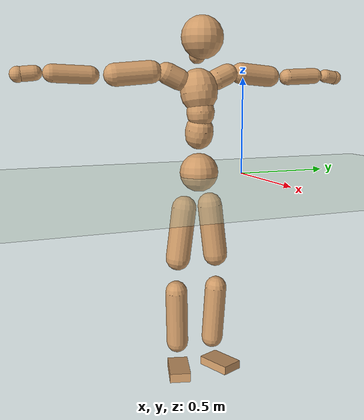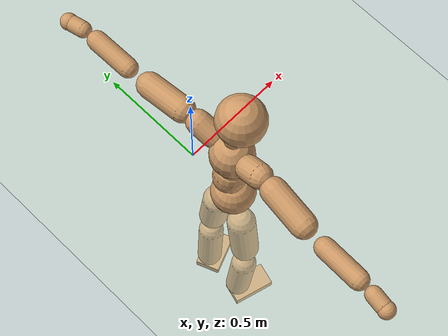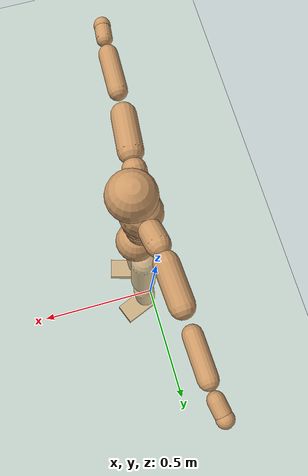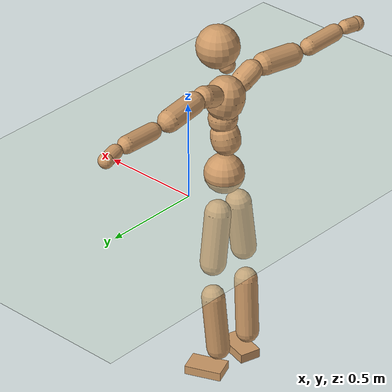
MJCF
<mujoco model="humanoid">
  <compiler coordinate="local"/>
  <default>
    <joint damping="0.0" armature="0.01" stiffness="0.0" limited="true"/>
    <geom conaffinity="1" condim="3" contype="7" margin="0.001" rgba="0.8 0.6 .4 1"/>
  </default>
  <asset>
    <texture type="skybox" builtin="gradient" rgb1=".4 .5 .6" rgb2="0 0 0" width="100" height="100"/>
    <texture builtin="flat" height="1278" mark="cross" markrgb="1 1 1" name="texgeom" random="0.01" rgb1="0.8 0.6 0.4" rgb2="0.8 0.6 0.4" type="cube" width="127"/>
    <texture builtin="checker" height="100" name="texplane" rgb1="0 0 0" rgb2="0.8 0.8 0.8" type="2d" width="100"/>
    <material name="MatPlane" reflectance="0.5" shininess="1" specular="1" texrepeat="60 60" texture="texplane"/>
    <material name="geom" texture="texgeom" texuniform="true"/>
  </asset>
  <worldbody>
    <light cutoff="100" diffuse="1 1 1" dir="-0 0 -1.3" directional="true" exponent="1" pos="0 0 1.3" specular=".1 .1 .1"/>
    <geom conaffinity="1" condim="3" name="floor" pos="0 0 0" rgba="0.8 0.9 0.8 1" size="100 100 .2" type="plane" material="MatPlane"/>
    <body name="Pelvis" pos="-0.0006 -0.2464 0.0186">
      <freejoint name="Pelvis"/>
      <geom type="sphere" contype="1" conaffinity="1" density="500" size="0.1000" pos="0.0000 0.0000 0.0000" name="Pelvis"/>
      <body name="L_Hip" pos="-0.0252 0.0613 -0.0893">
        <joint name="L_Hip_x" type="hinge" pos="0 0 0" axis="1 0 0" stiffness="800" damping="80" armature="0.02" range="-180.0000 180.0000"/>
        <joint name="L_Hip_y" type="hinge" pos="0 0 0" axis="0 1 0" stiffness="800" damping="80" armature="0.02" range="-180.0000 180.0000"/>
        <joint name="L_Hip_z" type="hinge" pos="0 0 0" axis="0 0 1" stiffness="800" damping="80" armature="0.02" range="-180.0000 180.0000"/>
        <geom type="capsule" contype="1" conaffinity="1" density="500" fromto="0.0012 0.0108 -0.0909 0.0047 0.0433 -0.3637" size="0.065" name="L_Hip"/>
        <body name="L_Knee" pos="0.0059 0.0541 -0.4546">
          <joint name="L_Knee_x" type="hinge" pos="0 0 0" axis="1 0 0" stiffness="800" damping="80" armature="0.02" range="-180.0000 180.0000"/>
          <joint name="L_Knee_y" type="hinge" pos="0 0 0" axis="0 1 0" stiffness="800" damping="80" armature="0.02" range="-180.0000 180.0000"/>
          <joint name="L_Knee_z" type="hinge" pos="0 0 0" axis="0 0 1" stiffness="800" damping="80" armature="0.02" range="-180.0000 180.0000"/>
          <geom type="capsule" contype="1" conaffinity="1" density="500" fromto="-0.0080 -0.0031 -0.1001 -0.0322 -0.0123 -0.4003" size="0.0585" name="L_Knee"/>
          <body name="L_Ankle" pos="-0.0402 -0.0153 -0.5003">
            <joint name="L_Ankle_x" type="hinge" pos="0 0 0" axis="1 0 0" stiffness="800" damping="80" armature="0.02" range="-180.0000 180.0000"/>
            <joint name="L_Ankle_y" type="hinge" pos="0 0 0" axis="0 1 0" stiffness="800" damping="80" armature="0.02" range="-180.0000 180.0000"/>
            <joint name="L_Ankle_z" type="hinge" pos="0 0 0" axis="0 0 1" stiffness="800" damping="80" armature="0.02" range="-180.0000 180.0000"/>
            <geom type="box" contype="1" conaffinity="1" density="500" pos="0.0664 0.0264 -0.0349" size="0.0945 0.0592 0.0229" quat="0.9822 0.0000 0.0000 0.1878" name="L_Ankle"/>
            <body name="L_Toe" pos="0.1328 0.0527 -0.0698">
              <joint name="L_Toe_x" type="hinge" pos="0 0 0" axis="1 0 0" stiffness="500" damping="50" armature="0.02" range="-180.0000 180.0000"/>
              <joint name="L_Toe_y" type="hinge" pos="0 0 0" axis="0 1 0" stiffness="500" damping="50" armature="0.02" range="-180.0000 180.0000"/>
              <joint name="L_Toe_z" type="hinge" pos="0 0 0" axis="0 0 1" stiffness="500" damping="50" armature="0.02" range="-180.0000 180.0000"/>
              <geom type="box" contype="1" conaffinity="1" density="500" pos="0.0000 0.0000 0.0366" size="0.0011 0.0027 0.0012" quat="0.9815 0.0000 0.0000 0.1916" name="L_Toe"/>
            </body>
          </body>
        </body>
      </body>
      <body name="R_Hip" pos="-0.0221 -0.0632 -0.0977">
        <joint name="R_Hip_x" type="hinge" pos="0 0 0" axis="1 0 0" stiffness="800" damping="80" armature="0.02" range="-180.0000 180.0000"/>
        <joint name="R_Hip_y" type="hinge" pos="0 0 0" axis="0 1 0" stiffness="800" damping="80" armature="0.02" range="-180.0000 180.0000"/>
        <joint name="R_Hip_z" type="hinge" pos="0 0 0" axis="0 0 1" stiffness="800" damping="80" armature="0.02" range="-180.0000 180.0000"/>
        <geom type="capsule" contype="1" conaffinity="1" density="500" fromto="-0.0018 -0.0112 -0.0901 -0.0071 -0.0448 -0.3604" size="0.0643" name="R_Hip"/>
        <body name="R_Knee" pos="-0.0089 -0.056 -0.4505">
          <joint name="R_Knee_x" type="hinge" pos="0 0 0" axis="1 0 0" stiffness="800" damping="80" armature="0.02" range="-180.0000 180.0000"/>
          <joint name="R_Knee_y" type="hinge" pos="0 0 0" axis="0 1 0" stiffness="800" damping="80" armature="0.02" range="-180.0000 180.0000"/>
          <joint name="R_Knee_z" type="hinge" pos="0 0 0" axis="0 0 1" stiffness="800" damping="80" armature="0.02" range="-180.0000 180.0000"/>
          <geom type="capsule" contype="1" conaffinity="1" density="500" fromto="-0.0074 0.0043 -0.0989 -0.0298 0.0170 -0.3956" size="0.0586" name="R_Knee"/>
          <body name="R_Ankle" pos="-0.0372 0.0213 -0.4945">
            <joint name="R_Ankle_x" type="hinge" pos="0 0 0" axis="1 0 0" stiffness="800" damping="80" armature="0.02" range="-180.0000 180.0000"/>
            <joint name="R_Ankle_y" type="hinge" pos="0 0 0" axis="0 1 0" stiffness="800" damping="80" armature="0.02" range="-180.0000 180.0000"/>
            <joint name="R_Ankle_z" type="hinge" pos="0 0 0" axis="0 0 1" stiffness="800" damping="80" armature="0.02" range="-180.0000 180.0000"/>
            <geom type="box" contype="1" conaffinity="1" density="500" pos="0.0716 -0.0201 -0.0365" size="0.0998 0.0551 0.0241" quat="0.9906 0.0000 0.0000 -0.1367" name="R_Ankle"/>
            <body name="R_Toe" pos="0.1432 -0.0403 -0.0729">
              <joint name="R_Toe_x" type="hinge" pos="0 0 0" axis="1 0 0" stiffness="500" damping="50" armature="0.02" range="-180.0000 180.0000"/>
              <joint name="R_Toe_y" type="hinge" pos="0 0 0" axis="0 1 0" stiffness="500" damping="50" armature="0.02" range="-180.0000 180.0000"/>
              <joint name="R_Toe_z" type="hinge" pos="0 0 0" axis="0 0 1" stiffness="500" damping="50" armature="0.02" range="-180.0000 180.0000"/>
              <geom type="box" contype="1" conaffinity="1" density="500" pos="0.0000 0.0000 0.0381" size="0.0011 0.0026 0.0013" quat="0.9917 0.0000 0.0000 -0.1285" name="R_Toe"/>
            </body>
          </body>
        </body>
      </body>
      <body name="Torso" pos="-0.0325 0.0052 0.132">
        <joint name="Torso_x" type="hinge" pos="0 0 0" axis="1 0 0" stiffness="1000" damping="100" armature="0.02" range="-180.0000 180.0000"/>
        <joint name="Torso_y" type="hinge" pos="0 0 0" axis="0 1 0" stiffness="1000" damping="100" armature="0.02" range="-180.0000 180.0000"/>
        <joint name="Torso_z" type="hinge" pos="0 0 0" axis="0 0 1" stiffness="1000" damping="100" armature="0.02" range="-180.0000 180.0000"/>
        <geom type="capsule" contype="1" conaffinity="1" density="500" fromto="0.0198 0.0024 0.0883 0.0132 0.0016 0.0589" size="0.072354" name="Torso"/>
        <body name="Spine" pos="0.033 0.004 0.1472">
          <joint name="Spine_x" type="hinge" pos="0 0 0" axis="1 0 0" stiffness="1000" damping="100" armature="0.02" range="-180.0000 180.0000"/>
          <joint name="Spine_y" type="hinge" pos="0 0 0" axis="0 1 0" stiffness="1000" damping="100" armature="0.02" range="-180.0000 180.0000"/>
          <joint name="Spine_z" type="hinge" pos="0 0 0" axis="0 0 1" stiffness="1000" damping="100" armature="0.02" range="-180.0000 180.0000"/>
          <geom type="capsule" contype="1" conaffinity="1" density="500" fromto="0.0005 -0.0021 0.0360 0.0003 -0.0014 0.0240" size="0.071982" name="Spine"/>
          <body name="Chest" pos="0.0009 -0.0035 0.06">
            <joint name="Chest_x" type="hinge" pos="0 0 0" axis="1 0 0" stiffness="1000" damping="100" armature="0.02" range="-180.0000 180.0000"/>
            <joint name="Chest_y" type="hinge" pos="0 0 0" axis="0 1 0" stiffness="1000" damping="100" armature="0.02" range="-180.0000 180.0000"/>
            <joint name="Chest_z" type="hinge" pos="0 0 0" axis="0 0 1" stiffness="1000" damping="100" armature="0.02" range="-180.0000 180.0000"/>
            <geom type="capsule" contype="1" conaffinity="1" density="500" fromto="-0.0131 -0.0050 0.0950 -0.0087 -0.0033 0.0633" size="0.095139" name="Chest"/>
            <body name="Neck" pos="-0.0242 -0.0139 0.2309">
              <joint name="Neck_x" type="hinge" pos="0 0 0" axis="1 0 0" stiffness="500" damping="50" armature="0.02" range="-180.0000 180.0000"/>
              <joint name="Neck_y" type="hinge" pos="0 0 0" axis="0 1 0" stiffness="500" damping="50" armature="0.02" range="-180.0000 180.0000"/>
              <joint name="Neck_z" type="hinge" pos="0 0 0" axis="0 0 1" stiffness="500" damping="50" armature="0.02" range="-180.0000 180.0000"/>
              <geom type="capsule" contype="1" conaffinity="1" density="500" fromto="0.0119 0.0020 0.0211 0.0476 0.0078 0.0842" size="0.042408" name="Neck"/>
              <body name="Head" pos="0.0595 0.0098 0.1053">
                <joint name="Head_x" type="hinge" pos="0 0 0" axis="1 0 0" stiffness="500" damping="50" armature="0.02" range="-180.0000 180.0000"/>
                <joint name="Head_y" type="hinge" pos="0 0 0" axis="0 1 0" stiffness="500" damping="50" armature="0.02" range="-180.0000 180.0000"/>
                <joint name="Head_z" type="hinge" pos="0 0 0" axis="0 0 1" stiffness="500" damping="50" armature="0.02" range="-180.0000 180.0000"/>
                <geom type="sphere" contype="1" conaffinity="1" density="500" size="0.1063" pos="0.0000 0.0000 0.0000" name="Head"/>
              </body>
            </body>
            <body name="L_Thorax" pos="-0.0188 0.071 0.1225">
              <joint name="L_Thorax_x" type="hinge" pos="0 0 0" axis="1 0 0" stiffness="500" damping="50" armature="0.02" range="-180.0000 180.0000"/>
              <joint name="L_Thorax_y" type="hinge" pos="0 0 0" axis="0 1 0" stiffness="500" damping="50" armature="0.02" range="-180.0000 180.0000"/>
              <joint name="L_Thorax_z" type="hinge" pos="0 0 0" axis="0 0 1" stiffness="500" damping="50" armature="0.02" range="-180.0000 180.0000"/>
              <geom type="capsule" contype="1" conaffinity="1" density="500" fromto="-0.0031 0.0235 0.0099 -0.0124 0.0938 0.0396" size="0.0535" name="L_Thorax"/>
              <body name="L_Shoulder" pos="-0.0155 0.1173 0.0494">
                <joint name="L_Shoulder_x" type="hinge" pos="0 0 0" axis="1 0 0" stiffness="500" damping="50" armature="0.02" range="-720.0000 720.0000"/>
                <joint name="L_Shoulder_y" type="hinge" pos="0 0 0" axis="0 1 0" stiffness="500" damping="50" armature="0.02" range="-720.0000 720.0000"/>
                <joint name="L_Shoulder_z" type="hinge" pos="0 0 0" axis="0 0 1" stiffness="500" damping="50" armature="0.02" range="-720.0000 720.0000"/>
                <geom type="capsule" contype="1" conaffinity="1" density="500" fromto="-0.0044 0.0585 -0.0046 -0.0174 0.2341 -0.0183" size="0.0554" name="L_Shoulder"/>
                <body name="L_Elbow" pos="-0.0218 0.2927 -0.0229">
                  <joint name="L_Elbow_x" type="hinge" pos="0 0 0" axis="1 0 0" stiffness="500" damping="50" armature="0.02" range="-720.0000 720.0000"/>
                  <joint name="L_Elbow_y" type="hinge" pos="0 0 0" axis="0 1 0" stiffness="500" damping="50" armature="0.02" range="-720.0000 720.0000"/>
                  <joint name="L_Elbow_z" type="hinge" pos="0 0 0" axis="0 0 1" stiffness="500" damping="50" armature="0.02" range="-720.0000 720.0000"/>
                  <geom type="capsule" contype="1" conaffinity="1" density="500" fromto="-0.0018 0.0584 0.0027 -0.0074 0.2337 0.0110" size="0.0426" name="L_Elbow"/>
                  <body name="L_Wrist" pos="-0.0092 0.2921 0.0137">
                    <joint name="L_Wrist_x" type="hinge" pos="0 0 0" axis="1 0 0" stiffness="300" damping="30" armature="0.02" range="-180.0000 180.0000"/>
                    <joint name="L_Wrist_y" type="hinge" pos="0 0 0" axis="0 1 0" stiffness="300" damping="30" armature="0.02" range="-180.0000 180.0000"/>
                    <joint name="L_Wrist_z" type="hinge" pos="0 0 0" axis="0 0 1" stiffness="300" damping="30" armature="0.02" range="-180.0000 180.0000"/>
                    <geom type="capsule" contype="1" conaffinity="1" density="500" fromto="-0.0034 0.0182 -0.0022 -0.0135 0.0729 -0.0089" size="0.0355" name="L_Wrist"/>
                    <body name="L_Hand" pos="-0.0169 0.0911 -0.0111">
                      <joint name="L_Hand_x" type="hinge" pos="0 0 0" axis="1 0 0" stiffness="300" damping="30" armature="0.02" range="-180.0000 180.0000"/>
                      <joint name="L_Hand_y" type="hinge" pos="0 0 0" axis="0 1 0" stiffness="300" damping="30" armature="0.02" range="-180.0000 180.0000"/>
                      <joint name="L_Hand_z" type="hinge" pos="0 0 0" axis="0 0 1" stiffness="300" damping="30" armature="0.02" range="-180.0000 180.0000"/>
                      <geom type="sphere" contype="1" conaffinity="1" density="500" size="0.0373" pos="0.0000 0.0000 0.0000" name="L_Hand"/>
                    </body>
                  </body>
                </body>
              </body>
            </body>
            <body name="R_Thorax" pos="-0.0225 -0.0822 0.1215">
              <joint name="R_Thorax_x" type="hinge" pos="0 0 0" axis="1 0 0" stiffness="500" damping="50" armature="0.02" range="-180.0000 180.0000"/>
              <joint name="R_Thorax_y" type="hinge" pos="0 0 0" axis="0 1 0" stiffness="500" damping="50" armature="0.02" range="-180.0000 180.0000"/>
              <joint name="R_Thorax_z" type="hinge" pos="0 0 0" axis="0 0 1" stiffness="500" damping="50" armature="0.02" range="-180.0000 180.0000"/>
              <geom type="capsule" contype="1" conaffinity="1" density="500" fromto="-0.0009 -0.0220 0.0104 -0.0035 -0.0881 0.0415" size="0.0542" name="R_Thorax"/>
              <body name="R_Shoulder" pos="-0.0044 -0.1102 0.0519">
                <joint name="R_Shoulder_x" type="hinge" pos="0 0 0" axis="1 0 0" stiffness="500" damping="50" armature="0.02" range="-720.0000 720.0000"/>
                <joint name="R_Shoulder_y" type="hinge" pos="0 0 0" axis="0 1 0" stiffness="500" damping="50" armature="0.02" range="-720.0000 720.0000"/>
                <joint name="R_Shoulder_z" type="hinge" pos="0 0 0" axis="0 0 1" stiffness="500" damping="50" armature="0.02" range="-720.0000 720.0000"/>
                <geom type="capsule" contype="1" conaffinity="1" density="500" fromto="-0.0061 -0.0587 -0.0051 -0.0244 -0.2348 -0.0206" size="0.057" name="R_Shoulder"/>
                <body name="R_Elbow" pos="-0.0305 -0.2936 -0.0257">
                  <joint name="R_Elbow_x" type="hinge" pos="0 0 0" axis="1 0 0" stiffness="500" damping="50" armature="0.02" range="-720.0000 720.0000"/>
                  <joint name="R_Elbow_y" type="hinge" pos="0 0 0" axis="0 1 0" stiffness="500" damping="50" armature="0.02" range="-720.0000 720.0000"/>
                  <joint name="R_Elbow_z" type="hinge" pos="0 0 0" axis="0 0 1" stiffness="500" damping="50" armature="0.02" range="-720.0000 720.0000"/>
                  <geom type="capsule" contype="1" conaffinity="1" density="500" fromto="-0.0018 -0.0603 0.0023 -0.0071 -0.2412 0.0091" size="0.0437" name="R_Elbow"/>
                  <body name="R_Wrist" pos="-0.0089 -0.3015 0.0114">
                    <joint name="R_Wrist_x" type="hinge" pos="0 0 0" axis="1 0 0" stiffness="300" damping="30" armature="0.02" range="-180.0000 180.0000"/>
                    <joint name="R_Wrist_y" type="hinge" pos="0 0 0" axis="0 1 0" stiffness="300" damping="30" armature="0.02" range="-180.0000 180.0000"/>
                    <joint name="R_Wrist_z" type="hinge" pos="0 0 0" axis="0 0 1" stiffness="300" damping="30" armature="0.02" range="-180.0000 180.0000"/>
                    <geom type="capsule" contype="1" conaffinity="1" density="500" fromto="-0.0022 -0.0187 -0.0018 -0.0087 -0.0748 -0.0071" size="0.0362" name="R_Wrist"/>
                    <body name="R_Hand" pos="-0.0109 -0.0935 -0.0089">
                      <joint name="R_Hand_x" type="hinge" pos="0 0 0" axis="1 0 0" stiffness="300" damping="30" armature="0.02" range="-180.0000 180.0000"/>
                      <joint name="R_Hand_y" type="hinge" pos="0 0 0" axis="0 1 0" stiffness="300" damping="30" armature="0.02" range="-180.0000 180.0000"/>
                      <joint name="R_Hand_z" type="hinge" pos="0 0 0" axis="0 0 1" stiffness="300" damping="30" armature="0.02" range="-180.0000 180.0000"/>
                      <geom type="sphere" contype="1" conaffinity="1" density="500" size="0.0379" pos="0.0000 0.0000 0.0000" name="R_Hand"/>
                    </body>
                  </body>
                </body>
              </body>
            </body>
          </body>
        </body>
      </body>
    </body>
  </worldbody>
  <actuator>
    <motor name="L_Hip_x" joint="L_Hip_x" gear="500"/>
    <motor name="L_Hip_y" joint="L_Hip_y" gear="500"/>
    <motor name="L_Hip_z" joint="L_Hip_z" gear="500"/>
    <motor name="L_Knee_x" joint="L_Knee_x" gear="500"/>
    <motor name="L_Knee_y" joint="L_Knee_y" gear="500"/>
    <motor name="L_Knee_z" joint="L_Knee_z" gear="500"/>
    <motor name="L_Ankle_x" joint="L_Ankle_x" gear="500"/>
    <motor name="L_Ankle_y" joint="L_Ankle_y" gear="500"/>
    <motor name="L_Ankle_z" joint="L_Ankle_z" gear="500"/>
    <motor name="L_Toe_x" joint="L_Toe_x" gear="500"/>
    <motor name="L_Toe_y" joint="L_Toe_y" gear="500"/>
    <motor name="L_Toe_z" joint="L_Toe_z" gear="500"/>
    <motor name="R_Hip_x" joint="R_Hip_x" gear="500"/>
    <motor name="R_Hip_y" joint="R_Hip_y" gear="500"/>
    <motor name="R_Hip_z" joint="R_Hip_z" gear="500"/>
    <motor name="R_Knee_x" joint="R_Knee_x" gear="500"/>
    <motor name="R_Knee_y" joint="R_Knee_y" gear="500"/>
    <motor name="R_Knee_z" joint="R_Knee_z" gear="500"/>
    <motor name="R_Ankle_x" joint="R_Ankle_x" gear="500"/>
    <motor name="R_Ankle_y" joint="R_Ankle_y" gear="500"/>
    <motor name="R_Ankle_z" joint="R_Ankle_z" gear="500"/>
    <motor name="R_Toe_x" joint="R_Toe_x" gear="500"/>
    <motor name="R_Toe_y" joint="R_Toe_y" gear="500"/>
    <motor name="R_Toe_z" joint="R_Toe_z" gear="500"/>
    <motor name="Torso_x" joint="Torso_x" gear="500"/>
    <motor name="Torso_y" joint="Torso_y" gear="500"/>
    <motor name="Torso_z" joint="Torso_z" gear="500"/>
    <motor name="Spine_x" joint="Spine_x" gear="500"/>
    <motor name="Spine_y" joint="Spine_y" gear="500"/>
    <motor name="Spine_z" joint="Spine_z" gear="500"/>
    <motor name="Chest_x" joint="Chest_x" gear="500"/>
    <motor name="Chest_y" joint="Chest_y" gear="500"/>
    <motor name="Chest_z" joint="Chest_z" gear="500"/>
    <motor name="Neck_x" joint="Neck_x" gear="500"/>
    <motor name="Neck_y" joint="Neck_y" gear="500"/>
    <motor name="Neck_z" joint="Neck_z" gear="500"/>
    <motor name="Head_x" joint="Head_x" gear="500"/>
    <motor name="Head_y" joint="Head_y" gear="500"/>
    <motor name="Head_z" joint="Head_z" gear="500"/>
    <motor name="L_Thorax_x" joint="L_Thorax_x" gear="500"/>
    <motor name="L_Thorax_y" joint="L_Thorax_y" gear="500"/>
    <motor name="L_Thorax_z" joint="L_Thorax_z" gear="500"/>
    <motor name="L_Shoulder_x" joint="L_Shoulder_x" gear="500"/>
    <motor name="L_Shoulder_y" joint="L_Shoulder_y" gear="500"/>
    <motor name="L_Shoulder_z" joint="L_Shoulder_z" gear="500"/>
    <motor name="L_Elbow_x" joint="L_Elbow_x" gear="500"/>
    <motor name="L_Elbow_y" joint="L_Elbow_y" gear="500"/>
    <motor name="L_Elbow_z" joint="L_Elbow_z" gear="500"/>
    <motor name="L_Wrist_x" joint="L_Wrist_x" gear="500"/>
    <motor name="L_Wrist_y" joint="L_Wrist_y" gear="500"/>
    <motor name="L_Wrist_z" joint="L_Wrist_z" gear="500"/>
    <motor name="L_Hand_x" joint="L_Hand_x" gear="500"/>
    <motor name="L_Hand_y" joint="L_Hand_y" gear="500"/>
    <motor name="L_Hand_z" joint="L_Hand_z" gear="500"/>
    <motor name="R_Thorax_x" joint="R_Thorax_x" gear="500"/>
    <motor name="R_Thorax_y" joint="R_Thorax_y" gear="500"/>
    <motor name="R_Thorax_z" joint="R_Thorax_z" gear="500"/>
    <motor name="R_Shoulder_x" joint="R_Shoulder_x" gear="500"/>
    <motor name="R_Shoulder_y" joint="R_Shoulder_y" gear="500"/>
    <motor name="R_Shoulder_z" joint="R_Shoulder_z" gear="500"/>
    <motor name="R_Elbow_x" joint="R_Elbow_x" gear="500"/>
    <motor name="R_Elbow_y" joint="R_Elbow_y" gear="500"/>
    <motor name="R_Elbow_z" joint="R_Elbow_z" gear="500"/>
    <motor name="R_Wrist_x" joint="R_Wrist_x" gear="500"/>
    <motor name="R_Wrist_y" joint="R_Wrist_y" gear="500"/>
    <motor name="R_Wrist_z" joint="R_Wrist_z" gear="500"/>
    <motor name="R_Hand_x" joint="R_Hand_x" gear="500"/>
    <motor name="R_Hand_y" joint="R_Hand_y" gear="500"/>
    <motor name="R_Hand_z" joint="R_Hand_z" gear="500"/>
  </actuator>
  <contact>
    <exclude body1="Torso" body2="Chest"/>
    <exclude body1="Head" body2="Chest"/>
    <exclude body1="R_Knee" body2="R_Toe"/>
    <exclude body1="R_Knee" body2="L_Ankle"/>
    <exclude body1="R_Knee" body2="L_Toe"/>
    <exclude body1="L_Knee" body2="L_Toe"/>
    <exclude body1="L_Knee" body2="R_Ankle"/>
    <exclude body1="L_Knee" body2="R_Toe"/>
    <exclude body1="L_Shoulder" body2="Chest"/>
    <exclude body1="R_Shoulder" body2="Chest"/>
  </contact>
  <sensor/>
  <size njmax="700" nconmax="700"/>
</mujoco>
